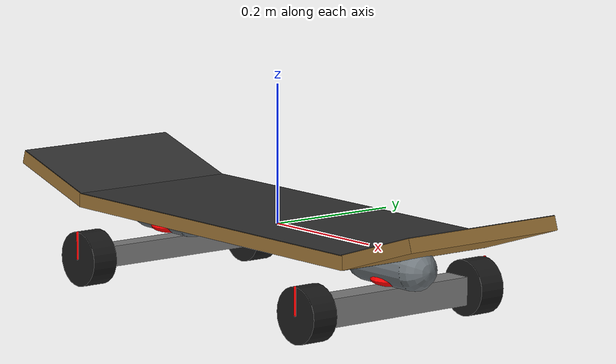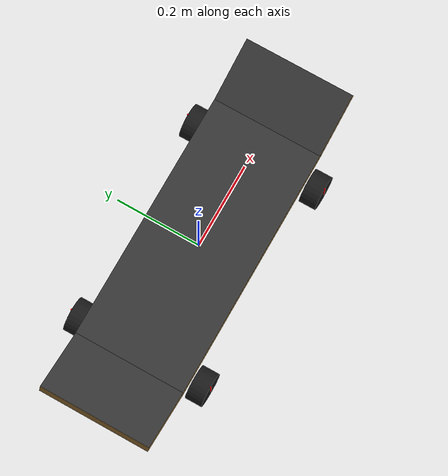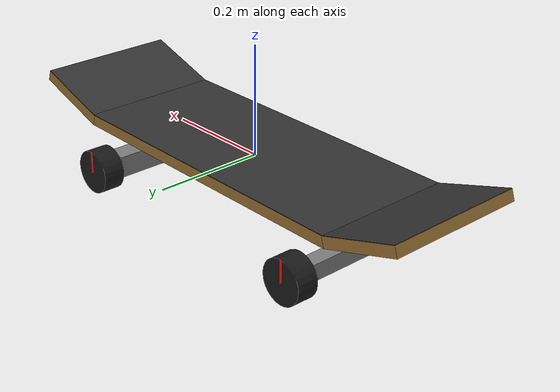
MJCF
<mujoco model="skateboard">
  <default>
    <default class="skateboard">
      <default class="board">
        <geom solimp="0.5 0.99 1e-4" solref=".001 1" />
        <default class="grip">
          <site group="0" rgba="0.2 0.2 0.2 1" />
        </default>
        <default class="wood">
          <geom friction="1.5 0.005 0.0001" rgba="0.5859 0.4336 0.1992 1" />
        </default>
      </default>

      <default class="hanger-rotate">
        <joint type="hinge" range="-9 +9" damping="1" stiffness="30"/>
      </default>

      <default class="truck">
        <geom type="capsule" size="0.03" rgba="0.4414 0.4727 0.4922 1"/>
      </default>

      <default class="wheel">
        <geom type="cylinder" size="0.04 0.02" rgba="0.1 0.1 0.1 1" quat="1 1 0 0" condim="6" friction="1 0.005 0.0001"/>
        <joint type="hinge" axis="0 1 0" frictionloss="0.005"/>
      </default>

      <default class="wheel-marker">
        <site type="capsule" group="0" size="0.002 0.019" rgba="1 0 0 1"/>
      </default>
    </default>

    <default class="tracking_site_board">
      <site type="sphere" size="0.027" rgba="0 1 0 1" group="3"/>
    </default>
  </default>

  <worldbody>
    <body name="skateboard" pos="0 0 0">
      <freejoint/>

      <camera name="skateboard:back-targetbodycom" pos="-3 0 2" xyaxes="0 -1 0 1 0 2" mode="targetbodycom"/>
      <camera name="skateboard:back-trackcom" pos="-3 0 2" xyaxes="0 -1 0 1 0 2" mode="trackcom"/>
      <camera name="skateboard:side-targetbodycom" pos="0 -3 2" xyaxes="1 0 0 0 1 2" mode="targetbodycom"/>
      <camera name="skateboard:side-trackcom" pos="0 -3 2" xyaxes="1 0 0 0 1 2" mode="trackcom"/>
      <camera name="skateboard:far-chase-trackcom" pos="-6 -6 5" xyaxes="0.746 -0.666 0.000 0.283 0.317 0.905" mode="trackcom"/>

      <!-- board -->
      <body name="board" pos="0 0 0.005">
        <joint name="board-tilt" axis="-1 0 0" range="-18 18" damping="1" stiffness="30"/>
        <body name="board-center">
          <geom name="board-base" class="wood" type="box" size="0.3 0.13 0.01" />
          <site name="board-base-grip" class="grip" type="box" size="0.299 0.1299 0.00099" pos="0 0 0.01" />

          <site name="track-front-plate" class="tracking_site_board" pos="+0.2 0.04 0.025" />
          <site name="track-back-plate" class="tracking_site_board" pos="-0.2 0.04 0.025" />
        </body>
        <body name="board-nose" pos="+0.3685 0.0 0.0225" quat="-0.9659 0 0.15 0" >
          <geom name="board-nose" class="wood" type="box" size="0.075 0.13 0.01" />
          <site name="board-nose-grip" class="grip" type="box" size="0.07399 0.1299 0.00099" pos="+0.001 0 0.01" />
        </body>
        <body name="board-tail" pos="-0.3685 0.0 0.0225" quat="+0.9659 0 0.15 0" >
          <geom name="board-tail" class="wood" type="box" size="0.075 0.13 0.01" />
          <site name="board-tail-grip" class="grip" type="box" size="0.07399 0.1299 0.00099" pos="-0.001 0 0.01" />

          <site name="track-tail" class="tracking_site_board" pos="0.025 0.04 0.025" />
        </body>
      </body>
      <!-- trucks -->
      <geom  name="truck-nose" class="truck" fromto="0.20 0.0 -0.020 0.30 0.0 -0.020" />
      <geom  name="truck-tail" class="truck" fromto="-0.20 0.0 -0.020 -0.30 0.0 -0.020" />

      <!-- Baseplate -->
      <body name="baseplate-front" pos="0.25 0.0 -0.01">
        <!-- rotate -->
        <body name="kingpin-front" pos="0 0 -0.01">
          <geom type="capsule" fromto="0 0 0 0 0 -0.02" size="0.01" rgba="0.5 0.5 0.5 1"/>
          <joint name="hanger-rotate-front" class="hanger-rotate" axis="0 0 1" />
          <!-- Bushings and hanger -->
          <body name="bushings-and-hanger-front" pos="0 0 -0.02">
            <geom name="bottom-bushing-front" type="ellipsoid" size="0.03 0.03 0.01" rgba="1 0 0 1"/>
            <geom name="hanger-front" type="box" size="0.02 0.12 0.02" pos="0 0 -0.03" rgba="0.5 0.5 0.5 1"/>
            <!-- Wheels -->
            <body name="wheel-front-left" pos="0.0 0.15 -0.03" >
              <joint name="wheel-front-left" class="wheel"/>
              <geom name="wheel-front-left" class="wheel"/>
              <site name="wheel-marker-front-left" class="wheel-marker" pos="0 0.02 0.02"/>
            </body>
            <body name="wheel-front-right" pos="0.0 -0.15 -0.03">
              <joint name="wheel-front-right" class="wheel"/>
              <geom name="wheel-front-right" class="wheel"/>
              <site name="wheel-marker-front-right" class="wheel-marker" pos="0 -0.02 0.02"/>
            </body>
          </body>
        </body>
      </body>
      <!-- identical but for back truck -->
      <body name="baseplate-back" pos="-0.25 0.0 -0.01">
        <body name="kingpin-back" pos="0 0 -0.01">
          <geom type="capsule" fromto="0 0 0 0 0 -0.02" size="0.01" rgba="0.5 0.5 0.5 1"/>
          <joint name="hanger-rotate-back" class="hanger-rotate" axis="0 0 -1"/>
          <!-- Bushings and hanger -->
          <body name="bushings-and-hanger-back" pos="0 0 -0.02">
            <geom name="bottom-bushing-back" type="ellipsoid" size="0.03 0.03 0.01" rgba="1 0 0 1"/>
            <geom name="hanger-back" type="box" size="0.015 0.12 0.015" pos="0 0 -0.03" rgba="0.5 0.5 0.5 1"/>

            <!-- Wheels -->
            <body name="wheel-back-left" pos="0.0 0.15 -0.03">
              <joint name="wheel-back-left" class="wheel"/>
              <geom name="wheel-back-left" class="wheel"/>
              <site name="wheel-marker-back-left" class="wheel-marker" pos="0 0.02 0.02"/>
            </body>
            <body name="wheel-back-right" pos="0.0 -0.15 -0.03">
              <joint name="wheel-back-right" class="wheel"/>
              <geom name="wheel-back-right" class="wheel"/>
              <site name="wheel-marker-back-right" class="wheel-marker" pos="0 -0.02 0.02"/>
            </body>
          </body>
        </body>
      </body>
    </body>
  </worldbody>
  <!-- equality/joint between hanger-rotate and hanger-rotate-back -->
  <equality>
    <joint joint1="hanger-rotate-back" joint2="board-tilt" polycoef="0 2.0 0 0 0"/>
    <joint joint1="hanger-rotate-front" joint2="board-tilt" polycoef="0 2.0 0 0 0"/>
  </equality>
  <!-- exlude contact between all board parts,   trucks and kingpins and hangars -->
  <contact>
        <exclude body1="board" body2="baseplate-front"/>
        <exclude body1="board" body2="baseplate-back"/>
        <exclude body1="board" body2="wheel-front-left"/>
        <exclude body1="board" body2="wheel-front-right"/>
        <exclude body1="board" body2="wheel-back-left"/>
        <exclude body1="board" body2="wheel-back-right"/>
        <exclude body1="board" body2="kingpin-front"/>
        <exclude body1="board" body2="kingpin-back"/>
        <exclude body1="board" body2="bushings-and-hanger-front"/>
        <exclude body1="board" body2="bushings-and-hanger-back"/>

        <exclude body1="board-center" body2="baseplate-front"/>
        <exclude body1="board-center" body2="baseplate-back"/>
        <exclude body1="board-center" body2="wheel-front-left"/>
        <exclude body1="board-center" body2="wheel-front-right"/>
        <exclude body1="board-center" body2="wheel-back-left"/>
        <exclude body1="board-center" body2="wheel-back-right"/>
        <exclude body1="board-center" body2="kingpin-front"/>
        <exclude body1="board-center" body2="kingpin-back"/>
        <exclude body1="board-center" body2="bushings-and-hanger-front"/>
        <exclude body1="board-center" body2="bushings-and-hanger-back"/>

        <exclude body1="baseplate-front" body2="wheel-front-left"/>
        <exclude body1="baseplate-front" body2="wheel-front-right"/>
        <exclude body1="baseplate-front" body2="wheel-back-left"/>
        <exclude body1="baseplate-front" body2="wheel-back-right"/>
        <exclude body1="baseplate-back" body2="wheel-front-left"/>
        <exclude body1="baseplate-back" body2="wheel-front-right"/>
        <exclude body1="baseplate-back" body2="wheel-back-left"/>
        <exclude body1="baseplate-back" body2="wheel-back-right"/>
        <exclude body1="wheel-front-left" body2="wheel-front-right"/>
        <exclude body1="wheel-front-left" body2="wheel-back-left"/>
        <exclude body1="wheel-front-left" body2="wheel-back-right"/>
        <exclude body1="wheel-front-right" body2="wheel-back-left"/>
        <exclude body1="wheel-front-right" body2="wheel-back-right"/>
        <exclude body1="wheel-back-left" body2="wheel-back-right"/>
        <exclude body1="baseplate-front" body2="baseplate-back"/>
        <exclude body1="baseplate-front" body2="kingpin-front"/>
        <exclude body1="baseplate-front" body2="kingpin-back"/>
        <exclude body1="baseplate-front" body2="bushings-and-hanger-front"/>
        <exclude body1="baseplate-front" body2="bushings-and-hanger-back"/>
        <exclude body1="baseplate-back" body2="kingpin-front"/>
        <exclude body1="baseplate-back" body2="kingpin-back"/>
        <exclude body1="baseplate-back" body2="bushings-and-hanger-front"/>
        <exclude body1="baseplate-back" body2="bushings-and-hanger-back"/>
        <exclude body1="kingpin-front" body2="kingpin-back"/>
        <exclude body1="kingpin-front" body2="bushings-and-hanger-front"/>
        <exclude body1="kingpin-front" body2="bushings-and-hanger-back"/>
        <exclude body1="kingpin-back" body2="bushings-and-hanger-front"/>
        <exclude body1="kingpin-back" body2="bushings-and-hanger-back"/>
        <exclude body1="bushings-and-hanger-front" body2="bushings-and-hanger-back"/>
      </contact>
</mujoco>
